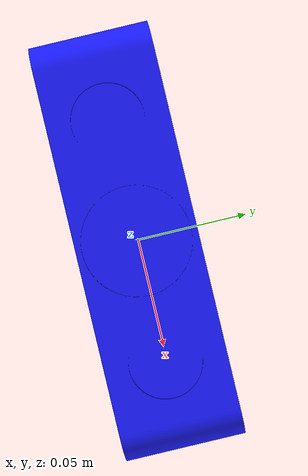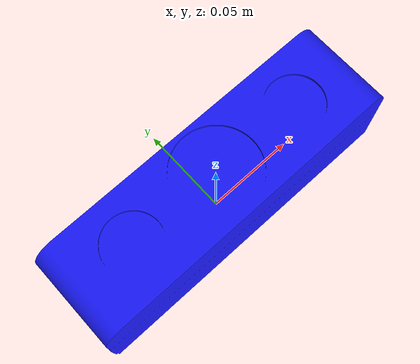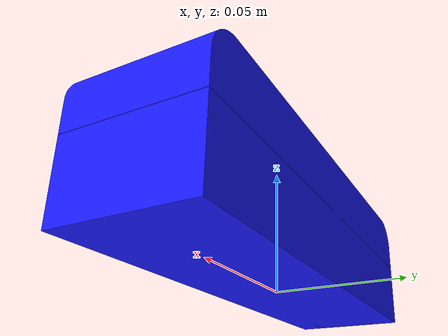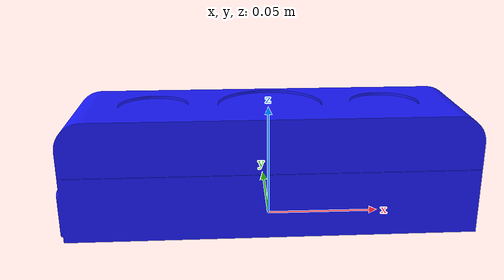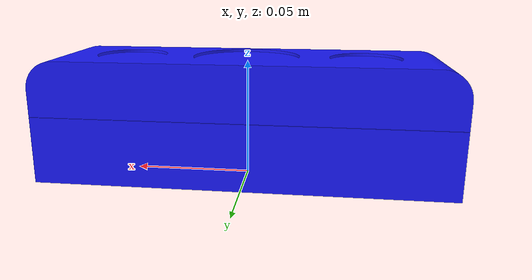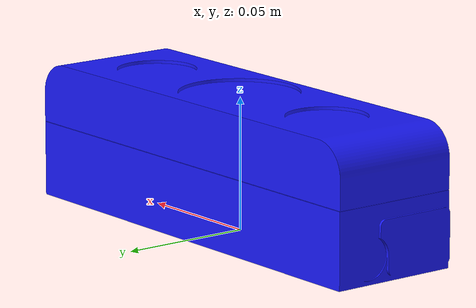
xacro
<?xml version="1.0"?>
<robot name="ensenso_camera">
  <xacro:include filename="$(find tsuzuki_sim_description)/urdf/ensenso.xacro" />

  <!-- Parameters -->
  <!-- Name of the camera -->
  <xacro:arg name="camera" default="N35" />
  <xacro:property name="camera" value="$(arg camera)" />

  <!-- Enlarges the bounding box in all directions -->
  <xacro:arg name="margin" default="0.03" />
  <xacro:property name="margin" value="$(arg margin)" />

  <!-- Tf Frame, that references to the cameras mounting frame -->
  <xacro:arg name="corresponding_frame_name" default="ensenso_world" />
  <xacro:property name="corresponding_frame_name" value="$(arg corresponding_frame_name)" />
  <link name="${corresponding_frame_name}"/>

  <xacro:ensenso_N_Series camera="${camera}" parent="${corresponding_frame_name}" margin="${margin}">
    <origin xyz="0 0 0" rpy="0 0 0" />
  </xacro:ensenso_N_Series>
</robot>

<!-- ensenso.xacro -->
<robot name="ensenso_camera">

  <material name="Ensenso/Blue">
    <color rgba="0.1 0.1 1.0 1.0"/>
  </material>

  <xacro:macro name="ensenso_N_Series" params="camera parent *origin margin">

    <joint name="${parent}_${camera}_joint" type="fixed">
      <xacro:insert_block name="origin"/>
      <parent link="${parent}" />
      <child link="${camera}_mounting_frame" />
    </joint>

    <link name="${camera}_mounting_frame">
      <visual>
        <!--origin rpy="0. 0. 0." xyz="0. 0. 0." /-->
        <origin rpy="0. 0. ${pi}" xyz="0. 0. 0." />
        <geometry>
          <!--mesh filename="package://tsuzuki_sim_description/meshes/camera/ensenso/N30-602-16.stl"/-->
          <mesh filename="package://tsuzuki_sim_description/meshes/camera/ensenso/N3x.stl"/>
        </geometry>
        <material name="Ensenso/Blue"/>
      </visual>
      <collision>
        <!--origin rpy="0. 0. 0." xyz="0. 0. 0." /-->
        <origin rpy="0. 0. ${pi}" xyz="0. 0. 0." />
        <geometry>
          <!--mesh filename="package://tsuzuki_sim_description/meshes/camera/ensenso/N30-602-16.stl"/-->
          <mesh filename="package://tsuzuki_sim_description/meshes/camera/ensenso/N3x.stl"/>
        </geometry>
      </collision>
      <inertial>
        <origin xyz="0. 0. 0." rpy="0. 0. 0." />
        <mass value="0.65" />
        <inertia ixx="0.001" ixy="0.0" ixz="0.0"
                 iyy="0.001" iyz="0.0" izz="0.001" />
      </inertial>
    </link>

    <!-- Projector -->
    <joint name="${camera}_projector_joint" type="fixed">
      <parent link="${camera}_mounting_frame"/>
      <child link="${camera}_projector_lens_frame"/>
      <origin xyz="0 0.00 0.05" rpy=" 0 0 0"/>
    </joint>
    <link name="${camera}_projector_lens_frame"/>

    <!-- Left lens -->
    <joint name="${camera}_left_lense_joint" type="fixed">
      <parent link="${camera}_mounting_frame"/>
      <child link="${camera}_left_lens_frame"/>
      <origin xyz="-0.05 0.00 0.05" rpy=" 0 0 0"/>
    </joint>
    <link name="${camera}_left_lens_frame"/>

    <!-- Right lens -->
    <joint name="${camera}_right_lens_joint" type="fixed">
      <parent link="${camera}_mounting_frame"/>
      <child link="${camera}_right_lens_frame"/>
      <origin xyz="0.05 0.00 0.05" rpy=" 0 0 0"/>
    </joint>
    <link name="${camera}_right_lens_frame"/>

  </xacro:macro>
</robot>
